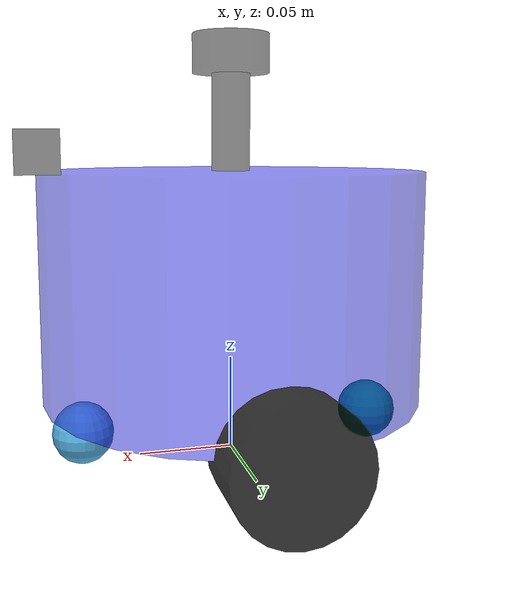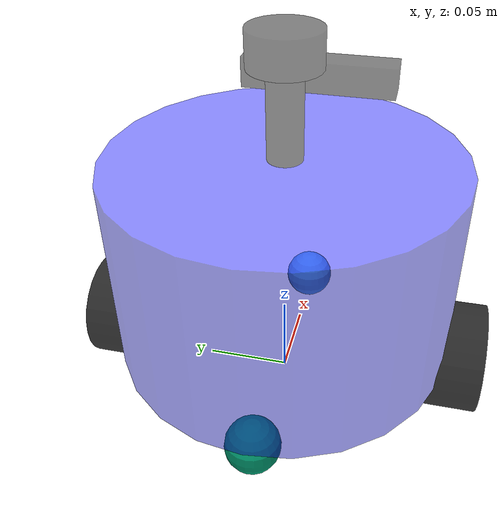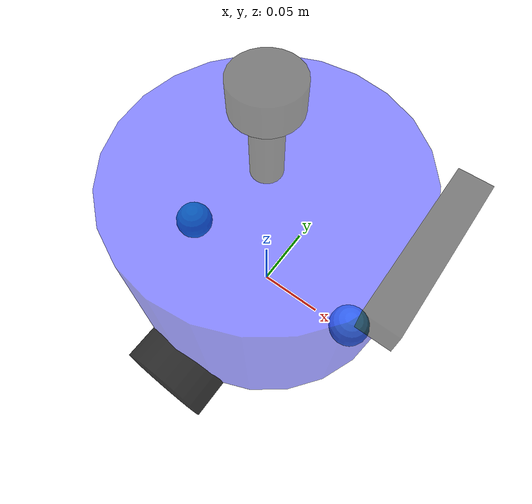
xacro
<?xml version="1.0"?>
<robot xmlns:xacro="http://www.ros.org/wiki/xacro" name="fishbot">

    <!-- Define materials used across included xacro files -->
    <material name="blue">
        <color rgba="0.1 0.1 1.0 0.5" />
    </material>
    <material name="green">
        <color rgba="0.1 1.0 0.1 0.5"/>
    </material>
    <material name="black">
        <color rgba="0.0 0.0 0.0 0.5" />
    </material>

    <xacro:include filename="$(find fishbot_description)/urdf/fishbot/base.urdf.xacro" />
    <xacro:include filename="$(find fishbot_description)/urdf/fishbot/sensor/imu.urdf.xacro" />
    <xacro:include filename="$(find fishbot_description)/urdf/fishbot/sensor/camera.urdf.xacro" />
    <xacro:include filename="$(find fishbot_description)/urdf/fishbot/sensor/laser.urdf.xacro" />
    <xacro:include filename="$(find fishbot_description)/urdf/fishbot/actuator/wheel.urdf.xacro" />
    <xacro:include filename="$(find fishbot_description)/urdf/fishbot/actuator/caster.urdf.xacro" />

    <!-- 引入插件 -->
     <!-- 使用ros2_control替代 -->
    <xacro:include filename="$(find fishbot_description)/urdf/fishbot/plugins/gazebo_sensor_plugin.xacro" />
    <xacro:include filename="$(find fishbot_description)/urdf/fishbot/fishbot.ros2_control.xacro" />

    <xacro:property name="base_cylinder_length" value="0.12"/>
    <xacro:property name="laser_pole_length" value="0.05"/>
    <xacro:base_link length="${base_cylinder_length}" radius="0.1"/>
    <xacro:imu_xacro xyz="0.0 0.05 0.0"/>
    <xacro:camera_xacro xyz="0.10 0.0 0.07"/>
    <!-- 杆底贴在 base_link 圆柱顶面：base 半高 + 杆半长（与 base、laser 杆长一致） -->
    <xacro:laser_xacro
        xyz="0 0 ${base_cylinder_length/2 + laser_pole_length/2}"
        laser_pole_len="${laser_pole_length}"/>

    <xacro:property name="wheel_left" value="left"/>
    <xacro:property name="wheel_right" value="right"/>
    <xacro:wheel_xacro wheel_name="${wheel_left}" xyz="0.0 0.10 -0.06"/>
    <xacro:wheel_xacro wheel_name="${wheel_right}" xyz="0.0 -0.10 -0.06"/>

    <xacro:caster_xacro caster_name="front_caster" xyz="0.08 0.0  -0.076"/>
    <xacro:caster_xacro caster_name="back_caster" xyz="-0.08 0.0  -0.076"/>

    <xacro:fishbot_ros2_control wheel_left="${wheel_left}" wheel_right="${wheel_right}" />
    <xacro:gazebo_sensor_plugin />
</robot>

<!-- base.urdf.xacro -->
<robot xmlns:xacro="http://www.ros.org/wiki/xacro">
    <xacro:include filename="$(find fishbot_description)/urdf/fishbot/common_inertia.xacro" />
    <xacro:macro name="base_link" params="length radius">
        <link name="base_footprint"/>

        <link name="base_link">
            <visual>
                <origin xyz="0 0 0" rpy="0 0 0"/>
                <geometry>
                    <cylinder length="${length}" radius="${radius}"/>
                </geometry>
                <material name="blue"/>
            </visual>
            <collision>
                <origin xyz="0 0 0" rpy="0 0 0"/>
                <geometry>
                    <cylinder length="${length}" radius="${radius}"/>
                </geometry>
                <material name="blue"/>
            </collision>
            <xacro:cylinder_inertia m="1.0" h="${length}" r="${radius}"/>
        </link>
        <gazebo reference="base_link">
            <material>Gazebo/Blue</material>
        </gazebo>
        <joint name="base_footprint_joint" type="fixed">
            <parent link="base_footprint"/>
            <child link="base_link"/>
            <origin xyz="0 0 ${length/2.0 + 0.032 - 0.001}" rpy="0 0 0"/>
        </joint>
    </xacro:macro>
</robot>

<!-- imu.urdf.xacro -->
<robot xmlns:xacro="http://www.ros.org/wiki/xacro">
    <xacro:include filename="$(find fishbot_description)/urdf/fishbot/common_inertia.xacro" />
    <xacro:macro name="imu_xacro" params="xyz">
        <link name="imu_link">
            <visual>
                <origin xyz="${xyz}" rpy="0 0 0"/>
                <geometry>
                    <box size="0.02 0.02 0.02" />
                </geometry>
                <material name="green"/>
            </visual>
            <collision>
                <origin xyz="${xyz}" rpy="0 0 0"/>
                <geometry>
                    <box size="0.02 0.02 0.02" />
                </geometry>
                <material name="green"/>
            </collision>

            <xacro:box_inertia m="0.01" w="0.02" d="0.02" h="0.02"/>
        </link>
        <gazebo reference="imu_link">
            <material>Gazebo/Green</material>
        </gazebo>
        <joint name="imu_joint" type="fixed">
            <parent link="base_link"/>
            <child link="imu_link"/>
            <origin xyz="0 0 0" rpy="0 0 0"/>
            <axis xyz="0 0 1" />
        </joint>
    </xacro:macro>

</robot>

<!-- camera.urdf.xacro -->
<robot xmlns:xacro="http://www.ros.org/wiki/xacro">
    <xacro:include filename="$(find fishbot_description)/urdf/fishbot/common_inertia.xacro" />
    <xacro:macro name="camera_xacro" params="xyz">
        <link name="camera_link">
            <visual>
                <origin xyz="0 0 0" rpy="0 0 0"/>
                <geometry>
                    <box size="0.02 0.10 0.02" />
                </geometry>
                <material name="black"/>
            </visual>
            <collision>
                <origin xyz="0 0 0" rpy="0 0 0"/>
                <geometry>
                    <box size="0.02 0.10 0.02" />
                </geometry>
                <material name="black"/>
            </collision>
            <xacro:box_inertia m="0.01" w="0.02" h="0.10" d="0.02" />
        </link>
        <gazebo reference="camera_link">
            <material>Gazebo/Black</material>
            <sensor type="depth" name="camera_sensor">
                <plugin name="depth_camera" filename="libgazebo_ros_camera.so">
                    <frame_name>camera_optical_link</frame_name>
                </plugin>
                <always_on>true</always_on>
                <update_rate>10</update_rate>
                <camera name="camera">
                    <horizontal_fov>1.5009831567</horizontal_fov>
                    <image>
                        <width>800</width>
                        <height>600</height>
                        <format>R8G8B8</format>
                    </image>
                    <distortion>
                        <k1>0.0</k1>
                        <k2>0.0</k2>
                        <k3>0.0</k3>
                        <p1>0.0</p1>
                        <p2>0.0</p2>
                        <center>0.5 0.5</center>
                    </distortion>
                </camera>
            </sensor>
        </gazebo>
        <joint name="camera_joint" type="fixed">
            <parent link="base_link"/>
            <child link="camera_link"/>
            <origin xyz="${xyz}" rpy="0 0 0"/>
        </joint>

        <link name="camera_optical_link"></link>
        <gazebo reference="camera_optical_link">
            <material>Gazebo/Black</material>
        </gazebo>
        <joint name="camera_optical_joint" type="fixed">
            <parent link="camera_link"/>
            <child link="camera_optical_link"/>
            <origin xyz="0 0 0" rpy="${-pi/2} 0 ${-pi/2}"/>
        </joint>
    </xacro:macro>
</robot>

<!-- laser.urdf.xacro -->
<robot xmlns:xacro="http://www.ros.org/wiki/xacro">
    <xacro:include filename="$(find fishbot_description)/urdf/fishbot/common_inertia.xacro" />
    <xacro:macro name="laser_xacro" params="xyz:='0 0 0' laser_pole_len:=0.05 laser_head_len:=0.02">
        <!-- 雷达支撑杆：圆柱以 link 原点为中心，沿 Z 从 -pole_len/2 到 +pole_len/2 -->
        <link name="laser_cylinder_link">
            <visual>
                <origin xyz="0 0 0" rpy="0 0 0"/>
                <geometry>
                    <cylinder radius="0.01" length="${laser_pole_len}" />
                </geometry>
                <material name="black"/>
            </visual>
            <collision>
                <!-- Keep collision aligned with the link frame -->
                <origin xyz="0 0 0" rpy="0 0 0"/>
                <geometry>
                    <cylinder radius="0.01" length="${laser_pole_len}" />
                </geometry>
                <material name="black"/>
            </collision>
            <xacro:cylinder_inertia m="0.01" r="0.01" h="${laser_pole_len}" />
        </link>

        <!-- parent=base_link：杆中心在 base_link 系中的位置由 xyz 给出（见 fishbot 中与底盘半高对齐） -->
        <joint name="laser_cylinder_joint" type="fixed">
            <parent link="base_link"/>
            <child link="laser_cylinder_link"/>
            <origin xyz="${xyz}" rpy="0 0 0"/>
        </joint>
        <!-- 雷达激光器 -->
        <link name="laser_link">
            <visual>
                <origin xyz="0 0 0" rpy="0 0 0"/>
                <geometry>
                    <cylinder radius="0.02" length="${laser_head_len}" />
                </geometry>
                <material name="black"/>
            </visual>
            <collision>
                <!-- Keep collision aligned with the link frame -->
                <origin xyz="0 0 0" rpy="0 0 0"/>
                <geometry>
                    <cylinder radius="0.02" length="${laser_head_len}" />
                </geometry>
                <material name="black"/>
            </collision>
            <xacro:cylinder_inertia m="0.03" r="0.02" h="${laser_head_len}" />
        </link>

        <!-- 子连杆原点：杆顶 z=pole_len/2，再接激光头半高 head_len/2，避免两节几何脱节 -->
        <joint name="laser_link_joint" type="fixed">
            <parent link="laser_cylinder_link"/>
            <child link="laser_link"/>
            <origin xyz="0 0 ${laser_pole_len/2 + laser_head_len/2}" rpy="0 0 0"/>
        </joint>

        <gazebo reference="laser_link">
            <material>Gazebo/Black</material>
        </gazebo>
        <gazebo reference="laser_cylinder_link">
            <material>Gazebo/Black</material>
        </gazebo>

    </xacro:macro>

</robot>

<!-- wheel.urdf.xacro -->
<robot xmlns:xacro="http://www.ros.org/wiki/xacro">
   <xacro:include filename="$(find fishbot_description)/urdf/fishbot/common_inertia.xacro" />
    <xacro:macro name="wheel_xacro" params="wheel_name xyz">
        <link name="${wheel_name}_wheel_link">
            <visual>
                <origin xyz="0 0 0" rpy="1.57079 0 0" />
                <geometry>
                    <cylinder length="0.04" radius="0.032" />
                </geometry>
                <material name="black">
                    <color rgba="0.0 0.0 0.0 0.8"/>
                </material>
            </visual>
            <collision>
                <origin xyz="0 0 0" rpy="1.57079 0 0" />
                <geometry>
                    <cylinder length="0.04" radius="0.032" />
                </geometry>
                <material name="black">
                    <color rgba="0.0 0.0 0.0 0.8"/>
                </material>
            </collision>
            <xacro:cylinder_inertia m="0.1" h="0.04" r="0.032"/>
        </link>
        <gazebo reference="${wheel_name}_wheel_link">
            <material>Gazebo/Black</material>
        </gazebo>

        <joint name="${wheel_name}_wheel_joint" type="continuous">
            <parent link="base_link" />
            <child link="${wheel_name}_wheel_link" />
            <origin xyz="${xyz}" />
            <axis xyz="0 1 0" />
        </joint>

        <gazebo reference="${wheel_name}_wheel_link">
            <mu1 value="20.0"/>
            <mu2 value="20.0"/>
            <kp value="1000000000.0"/>
            <kd value="1.0"/>
        </gazebo>
    </xacro:macro>
</robot>

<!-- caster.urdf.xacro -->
<robot xmlns:xacro="http://www.ros.org/wiki/xacro">
  <xacro:include filename="$(find fishbot_description)/urdf/fishbot/common_inertia.xacro" />

  <xacro:macro name="caster_xacro" params="caster_name xyz">
    <link name="${caster_name}_link">
      <visual>
        <origin xyz="0.0 0.0 0.0" rpy="0 0.0 0.0" />
        <geometry>
          <sphere radius="0.016"/>
        </geometry>
      </visual>
      <collision>
        <origin xyz="0.0 0.0 0.0" rpy="0 0.0 0.0" />
        <geometry>
          <sphere radius="0.016"/>
        </geometry>
      </collision>
      <material name="yellow">
        <color rgba="1.0 1.0 0.0 0.8"/>
      </material>
      <xacro:sphere_inertia m="0.05" r="016" />
    </link>

    <joint name="${caster_name}_joint" type="fixed">
      <parent link="base_link" />
      <child link="${caster_name}_link" />
      <origin xyz="${xyz}" rpy="0.0 0.0 0.0" />
      <axis xyz="0.0 1 0.0"/>
    </joint>

    <gazebo reference="${caster_name}_link">
      <mu1 value="0.0" />
      <mu2 value="0.0" />
      <kp value="1000000000.0" />
      <kd value="1.0" />
    </gazebo>
  </xacro:macro>

</robot>
